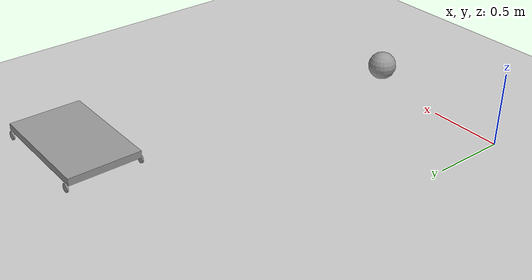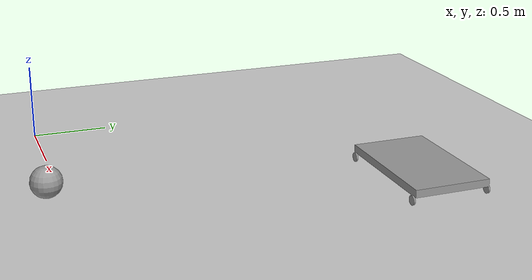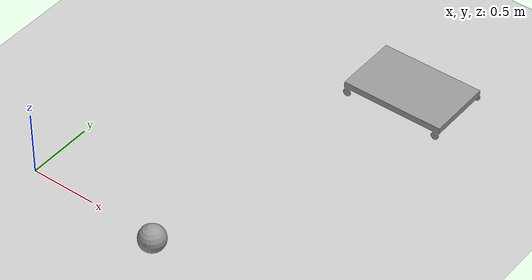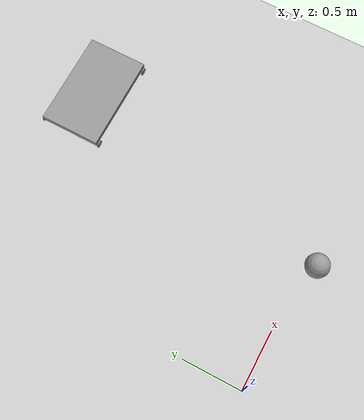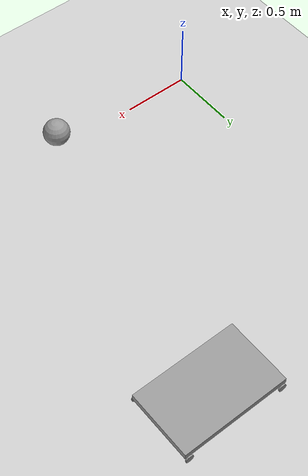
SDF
<sdf version="1.6">
 <world name="default">
  <model name="ground_plane">
   <static>1</static>
   <link name="link">
    <collision name="collision">
     <geometry><plane><normal>0 0 1</normal><size>100 100</size></plane></geometry>
     <surface><friction><ode><mu>100</mu><mu2>50</mu2></ode></friction></surface>
    </collision>
    <visual name="visual">
     <cast_shadows>0</cast_shadows>
     <geometry><plane><normal>0 0 1</normal><size>100 100</size></plane></geometry>
     <material>
      <script><uri>file://media/materials/scripts/gazebo.material</uri><name>Gazebo/Grey</name></script>
     </material>
    </visual>
   </link>
  </model>
  <model name="car_v1_0">
   <link name="link_0">
    <pose>0 0.000402 0.04 0 -0 0</pose>
    <inertial>
     <mass>1</mass>
     <inertia>
      <ixx>0.166667</ixx>
      <ixy>0</ixy>
      <ixz>0</ixz>
      <iyy>0.166667</iyy>
      <iyz>0</iyz>
      <izz>0.166667</izz>
     </inertia>
    </inertial>
    <visual name="visual">
     <geometry><box><size>0.8 0.5 0.05</size></box></geometry>
     <material>
      <lighting>1</lighting>
      <script><uri>file://media/materials/scripts/gazebo.material</uri><name>Gazebo/Grey</name></script>
      <ambient>0.3 0.3 0.3 1</ambient>
      <diffuse>0.7 0.7 0.7 1</diffuse>
      <specular>0.01 0.5 0.01 1</specular>
      <emissive>0 0 0 1</emissive>
      <shader type="vertex"><normal_map>__default__</normal_map></shader>
     </material>
    </visual>
    <collision name="collision">
     <geometry><box><size>0.8 0.5 0.05</size></box></geometry>
     <surface>
      <friction>
       <ode><mu>1</mu><mu2>1</mu2><fdir1>0 0 0</fdir1><slip1>0</slip1><slip2>0</slip2></ode>
       <torsional>
        <coefficient>1</coefficient>
        <patch_radius>0</patch_radius>
        <surface_radius>0</surface_radius>
        <use_patch_radius>1</use_patch_radius>
        <ode><slip>0</slip></ode>
       </torsional>
      </friction>
      <bounce><restitution_coefficient>0</restitution_coefficient><threshold>1e+06</threshold></bounce>
      <contact>
       <collide_without_contact>0</collide_without_contact>
       <collide_without_contact_bitmask>1</collide_without_contact_bitmask>
       <collide_bitmask>1</collide_bitmask>
       <ode>
        <soft_cfm>0</soft_cfm>
        <soft_erp>0.2</soft_erp>
        <kp>1e+13</kp>
        <kd>1</kd>
        <max_vel>0.01</max_vel>
        <min_depth>0</min_depth>
       </ode>
       <bullet>
        <split_impulse>1</split_impulse>
        <split_impulse_penetration_threshold>-0.01</split_impulse_penetration_threshold>
        <soft_cfm>0</soft_cfm>
        <soft_erp>0.2</soft_erp>
        <kp>1e+13</kp>
        <kd>1</kd>
       </bullet>
      </contact>
     </surface>
    </collision>
   </link>
   <link name="link_2">
    <pose>-0.37 -0.256611 -0.01 1.5707 -0 0</pose>
    <inertial>
     <mass>1</mass>
     <inertia><ixx>0.145833</ixx><ixy>0</ixy><ixz>0</ixz><iyy>0.145833</iyy><iyz>0</iyz><izz>0.125</izz></inertia>
    </inertial>
    <visual name="visual">
     <geometry><cylinder><radius>0.03</radius><length>0.01</length></cylinder></geometry>
     <material>
      <lighting>1</lighting>
      <script><uri>file://media/materials/scripts/gazebo.material</uri><name>Gazebo/Grey</name></script>
      <ambient>0.3 0.3 0.3 1</ambient>
      <diffuse>0.7 0.7 0.7 1</diffuse>
      <specular>0.01 0.01 0.01 1</specular>
      <emissive>0 0 0 1</emissive>
      <shader type="vertex"><normal_map>__default__</normal_map></shader>
     </material>
    </visual>
    <collision name="collision">
     <geometry><cylinder><radius>0.03</radius><length>0.01</length></cylinder></geometry>
     <surface>
      <friction>
       <ode><mu>1</mu><mu2>1</mu2><fdir1>0 0 0</fdir1><slip1>0</slip1><slip2>0</slip2></ode>
       <torsional>
        <coefficient>1</coefficient>
        <patch_radius>0</patch_radius>
        <surface_radius>0</surface_radius>
        <use_patch_radius>1</use_patch_radius>
        <ode><slip>0</slip></ode>
       </torsional>
      </friction>
      <bounce><restitution_coefficient>0</restitution_coefficient><threshold>1e+06</threshold></bounce>
      <contact>
       <collide_without_contact>0</collide_without_contact>
       <collide_without_contact_bitmask>1</collide_without_contact_bitmask>
       <collide_bitmask>1</collide_bitmask>
       <ode>
        <soft_cfm>0</soft_cfm>
        <soft_erp>0.2</soft_erp>
        <kp>1e+13</kp>
        <kd>1</kd>
        <max_vel>0.01</max_vel>
        <min_depth>0</min_depth>
       </ode>
       <bullet>
        <split_impulse>1</split_impulse>
        <split_impulse_penetration_threshold>-0.01</split_impulse_penetration_threshold>
        <soft_cfm>0</soft_cfm>
        <soft_erp>0.2</soft_erp>
        <kp>1e+13</kp>
        <kd>1</kd>
       </bullet>
      </contact>
     </surface>
    </collision>
   </link>
   <link name="link_2_clone">
    <pose>-0.37 0.255405 -0.01 1.5707 -0 0</pose>
    <inertial>
     <mass>1</mass>
     <inertia><ixx>0.145833</ixx><ixy>0</ixy><ixz>0</ixz><iyy>0.145833</iyy><iyz>0</iyz><izz>0.125</izz></inertia>
    </inertial>
    <visual name="visual">
     <geometry><cylinder><radius>0.03</radius><length>0.01</length></cylinder></geometry>
     <material>
      <lighting>1</lighting>
      <script><uri>file://media/materials/scripts/gazebo.material</uri><name>Gazebo/Grey</name></script>
      <ambient>0.3 0.3 0.3 1</ambient>
      <diffuse>0.7 0.7 0.7 1</diffuse>
      <specular>0.01 0.01 0.01 1</specular>
      <emissive>0 0 0 1</emissive>
      <shader type="vertex"><normal_map>__default__</normal_map></shader>
     </material>
    </visual>
    <collision name="collision">
     <geometry><cylinder><radius>0.03</radius><length>0.01</length></cylinder></geometry>
     <surface>
      <friction>
       <ode><mu>1</mu><mu2>1</mu2><fdir1>0 0 0</fdir1><slip1>0</slip1><slip2>0</slip2></ode>
       <torsional>
        <coefficient>1</coefficient>
        <patch_radius>0</patch_radius>
        <surface_radius>0</surface_radius>
        <use_patch_radius>1</use_patch_radius>
        <ode><slip>0</slip></ode>
       </torsional>
      </friction>
      <bounce><restitution_coefficient>0</restitution_coefficient><threshold>1e+06</threshold></bounce>
      <contact>
       <collide_without_contact>0</collide_without_contact>
       <collide_without_contact_bitmask>1</collide_without_contact_bitmask>
       <collide_bitmask>1</collide_bitmask>
       <ode>
        <soft_cfm>0</soft_cfm>
        <soft_erp>0.2</soft_erp>
        <kp>1e+13</kp>
        <kd>1</kd>
        <max_vel>0.01</max_vel>
        <min_depth>0</min_depth>
       </ode>
       <bullet>
        <split_impulse>1</split_impulse>
        <split_impulse_penetration_threshold>-0.01</split_impulse_penetration_threshold>
        <soft_cfm>0</soft_cfm>
        <soft_erp>0.2</soft_erp>
        <kp>1e+13</kp>
        <kd>1</kd>
       </bullet>
      </contact>
     </surface>
    </collision>
   </link>
   <link name="link_2_clone_0">
    <pose>0.37 -0.254601 -0.01 1.5707 -0 0</pose>
    <inertial>
     <mass>1</mass>
     <inertia><ixx>0.145833</ixx><ixy>0</ixy><ixz>0</ixz><iyy>0.145833</iyy><iyz>0</iyz><izz>0.125</izz></inertia>
    </inertial>
    <visual name="visual">
     <geometry><cylinder><radius>0.03</radius><length>0.01</length></cylinder></geometry>
     <material>
      <lighting>1</lighting>
      <script><uri>file://media/materials/scripts/gazebo.material</uri><name>Gazebo/Grey</name></script>
      <ambient>0.3 0.3 0.3 1</ambient>
      <diffuse>0.7 0.7 0.7 1</diffuse>
      <specular>0.01 0.01 0.01 1</specular>
      <emissive>0 0 0 1</emissive>
      <shader type="vertex"><normal_map>__default__</normal_map></shader>
     </material>
    </visual>
    <collision name="collision">
     <geometry><cylinder><radius>0.03</radius><length>0.01</length></cylinder></geometry>
     <surface>
      <friction>
       <ode><mu>1</mu><mu2>1</mu2><fdir1>0 0 0</fdir1><slip1>0</slip1><slip2>0</slip2></ode>
       <torsional>
        <coefficient>1</coefficient>
        <patch_radius>0</patch_radius>
        <surface_radius>0</surface_radius>
        <use_patch_radius>1</use_patch_radius>
        <ode><slip>0</slip></ode>
       </torsional>
      </friction>
      <bounce><restitution_coefficient>0</restitution_coefficient><threshold>1e+06</threshold></bounce>
      <contact>
       <collide_without_contact>0</collide_without_contact>
       <collide_without_contact_bitmask>1</collide_without_contact_bitmask>
       <collide_bitmask>1</collide_bitmask>
       <ode>
        <soft_cfm>0</soft_cfm>
        <soft_erp>0.2</soft_erp>
        <kp>1e+13</kp>
        <kd>1</kd>
        <max_vel>0.01</max_vel>
        <min_depth>0</min_depth>
       </ode>
       <bullet>
        <split_impulse>1</split_impulse>
        <split_impulse_penetration_threshold>-0.01</split_impulse_penetration_threshold>
        <soft_cfm>0</soft_cfm>
        <soft_erp>0.2</soft_erp>
        <kp>1e+13</kp>
        <kd>1</kd>
       </bullet>
      </contact>
     </surface>
    </collision>
   </link>
   <link name="link_2_clone_1">
    <pose>0.37 0.255405 -0.01 1.5707 -0 0</pose>
    <inertial>
     <mass>1</mass>
     <inertia><ixx>0.145833</ixx><ixy>0</ixy><ixz>0</ixz><iyy>0.145833</iyy><iyz>0</iyz><izz>0.125</izz></inertia>
    </inertial>
    <visual name="visual">
     <geometry><cylinder><radius>0.03</radius><length>0.01</length></cylinder></geometry>
     <material>
      <lighting>1</lighting>
      <script><uri>file://media/materials/scripts/gazebo.material</uri><name>Gazebo/Grey</name></script>
      <ambient>0.3 0.3 0.3 1</ambient>
      <diffuse>0.7 0.7 0.7 1</diffuse>
      <specular>0.01 0.01 0.01 1</specular>
      <emissive>0 0 0 1</emissive>
      <shader type="vertex"><normal_map>__default__</normal_map></shader>
     </material>
    </visual>
    <collision name="collision">
     <geometry><cylinder><radius>0.03</radius><length>0.01</length></cylinder></geometry>
     <surface>
      <friction>
       <ode><mu>1</mu><mu2>1</mu2><fdir1>0 0 0</fdir1><slip1>0</slip1><slip2>0</slip2></ode>
       <torsional>
        <coefficient>1</coefficient>
        <patch_radius>0</patch_radius>
        <surface_radius>0</surface_radius>
        <use_patch_radius>1</use_patch_radius>
        <ode><slip>0</slip></ode>
       </torsional>
      </friction>
      <bounce><restitution_coefficient>0</restitution_coefficient><threshold>1e+06</threshold></bounce>
      <contact>
       <collide_without_contact>0</collide_without_contact>
       <collide_without_contact_bitmask>1</collide_without_contact_bitmask>
       <collide_bitmask>1</collide_bitmask>
       <ode>
        <soft_cfm>0</soft_cfm>
        <soft_erp>0.2</soft_erp>
        <kp>1e+13</kp>
        <kd>1</kd>
        <max_vel>0.01</max_vel>
        <min_depth>0</min_depth>
       </ode>
       <bullet>
        <split_impulse>1</split_impulse>
        <split_impulse_penetration_threshold>-0.01</split_impulse_penetration_threshold>
        <soft_cfm>0</soft_cfm>
        <soft_erp>0.2</soft_erp>
        <kp>1e+13</kp>
        <kd>1</kd>
       </bullet>
      </contact>
     </surface>
    </collision>
   </link>
   <joint name="link_0_JOINT_0" type="universal">
    <parent>link_0</parent>
    <child>link_2</child>
    <axis>
     <xyz>1 0 0</xyz>
     <use_parent_model_frame>0</use_parent_model_frame>
     <limit>
      <lower>-1.79769e+308</lower>
      <upper>1.79769e+308</upper>
      <effort>-1</effort>
      <velocity>-1</velocity>
     </limit>
     <dynamics>
      <spring_reference>0</spring_reference>
      <spring_stiffness>0</spring_stiffness>
      <damping>0</damping>
      <friction>0</friction>
     </dynamics>
    </axis>
    <axis2>
     <xyz>0 1 0</xyz>
     <use_parent_model_frame>0</use_parent_model_frame>
     <dynamics>
      <spring_reference>0</spring_reference>
      <spring_stiffness>0</spring_stiffness>
      <damping>0</damping>
      <friction>0</friction>
     </dynamics>
     <limit>
      <lower>-1.79769e+308</lower>
      <upper>1.79769e+308</upper>
      <effort>-1</effort>
      <velocity>-1</velocity>
     </limit>
    </axis2>
    <physics>
     <ode><limit><cfm>0</cfm><erp>0.2</erp></limit><suspension><cfm>0</cfm><erp>0.2</erp></suspension></ode>
    </physics>
   </joint>
   <joint name="link_0_JOINT_1" type="universal">
    <parent>link_0</parent>
    <child>link_2_clone</child>
    <axis>
     <xyz>1 0 0</xyz>
     <use_parent_model_frame>0</use_parent_model_frame>
     <limit>
      <lower>-1.79769e+308</lower>
      <upper>1.79769e+308</upper>
      <effort>-1</effort>
      <velocity>-1</velocity>
     </limit>
     <dynamics>
      <spring_reference>0</spring_reference>
      <spring_stiffness>0</spring_stiffness>
      <damping>0</damping>
      <friction>0</friction>
     </dynamics>
    </axis>
    <axis2>
     <xyz>0 1 0</xyz>
     <use_parent_model_frame>0</use_parent_model_frame>
     <dynamics>
      <spring_reference>0</spring_reference>
      <spring_stiffness>0</spring_stiffness>
      <damping>0</damping>
      <friction>0</friction>
     </dynamics>
     <limit>
      <lower>-1.79769e+308</lower>
      <upper>1.79769e+308</upper>
      <effort>-1</effort>
      <velocity>-1</velocity>
     </limit>
    </axis2>
    <physics>
     <ode><limit><cfm>0</cfm><erp>0.2</erp></limit><suspension><cfm>0</cfm><erp>0.2</erp></suspension></ode>
    </physics>
   </joint>
   <joint name="link_0_JOINT_2" type="universal">
    <parent>link_0</parent>
    <child>link_2_clone_0</child>
    <axis>
     <xyz>1 0 0</xyz>
     <use_parent_model_frame>0</use_parent_model_frame>
     <limit>
      <lower>-1.79769e+308</lower>
      <upper>1.79769e+308</upper>
      <effort>-1</effort>
      <velocity>-1</velocity>
     </limit>
     <dynamics>
      <spring_reference>0</spring_reference>
      <spring_stiffness>0</spring_stiffness>
      <damping>0</damping>
      <friction>0</friction>
     </dynamics>
    </axis>
    <axis2>
     <xyz>0 1 0</xyz>
     <use_parent_model_frame>0</use_parent_model_frame>
     <dynamics>
      <spring_reference>0</spring_reference>
      <spring_stiffness>0</spring_stiffness>
      <damping>0</damping>
      <friction>0</friction>
     </dynamics>
     <limit>
      <lower>-1.79769e+308</lower>
      <upper>1.79769e+308</upper>
      <effort>-1</effort>
      <velocity>-1</velocity>
     </limit>
    </axis2>
    <physics>
     <ode><limit><cfm>0</cfm><erp>0.2</erp></limit><suspension><cfm>0</cfm><erp>0.2</erp></suspension></ode>
    </physics>
   </joint>
   <joint name="link_0_JOINT_3" type="revolute">
    <parent>link_0</parent>
    <child>link_2_clone_1</child>
    <axis>
     <xyz>1 0 0</xyz>
     <use_parent_model_frame>0</use_parent_model_frame>
     <limit>
      <lower>-1.79769e+308</lower>
      <upper>1.79769e+308</upper>
      <effort>-1</effort>
      <velocity>-1</velocity>
     </limit>
     <dynamics>
      <spring_reference>0</spring_reference>
      <spring_stiffness>0</spring_stiffness>
      <damping>0</damping>
      <friction>0</friction>
     </dynamics>
    </axis>
    <physics>
     <ode><limit><cfm>0</cfm><erp>0.2</erp></limit><suspension><cfm>0</cfm><erp>0.2</erp></suspension></ode>
    </physics>
   </joint>
   <static>0</static>
   <pose>1.57725 2.16095 0.039999 0 4e-06 0.000157</pose>
  </model>
  <model name="my_ball">
   <link name="link_0">
    <inertial>
     <mass>1</mass>
     <inertia><ixx>0.1</ixx><ixy>0</ixy><ixz>0</ixz><iyy>0.1</iyy><iyz>0</iyz><izz>0.1</izz></inertia>
    </inertial>
    <visual name="visual">
     <geometry><sphere><radius>0.1</radius></sphere></geometry>
     <material>
      <lighting>1</lighting>
      <script><uri>file://media/materials/scripts/gazebo.material</uri><name>Gazebo/Grey</name></script>
      <shader type="pixel"><normal_map>__default__</normal_map></shader>
      <ambient>1 1 1 1</ambient>
      <diffuse>1 1 1 1</diffuse>
      <specular>1 1 1 1</specular>
      <emissive>1 1 1 1</emissive>
     </material>
    </visual>
    <collision name="collision">
     <geometry><sphere><radius>0.1</radius></sphere></geometry>
     <surface>
      <friction>
       <ode><mu>1</mu><mu2>1</mu2><fdir1>0 0 0</fdir1><slip1>0</slip1><slip2>0</slip2></ode>
       <torsional>
        <coefficient>1</coefficient>
        <patch_radius>0</patch_radius>
        <surface_radius>0</surface_radius>
        <use_patch_radius>1</use_patch_radius>
        <ode><slip>0</slip></ode>
       </torsional>
      </friction>
      <bounce><restitution_coefficient>0</restitution_coefficient><threshold>1e+06</threshold></bounce>
      <contact>
       <collide_without_contact>0</collide_without_contact>
       <collide_without_contact_bitmask>1</collide_without_contact_bitmask>
       <collide_bitmask>1</collide_bitmask>
       <ode>
        <soft_cfm>0</soft_cfm>
        <soft_erp>0.2</soft_erp>
        <kp>1e+13</kp>
        <kd>1</kd>
        <max_vel>0.01</max_vel>
        <min_depth>0</min_depth>
       </ode>
       <bullet>
        <split_impulse>1</split_impulse>
        <split_impulse_penetration_threshold>-0.01</split_impulse_penetration_threshold>
        <soft_cfm>0</soft_cfm>
        <soft_erp>0.2</soft_erp>
        <kp>1e+13</kp>
        <kd>1</kd>
       </bullet>
      </contact>
     </surface>
    </collision>
   </link>
   <static>0</static>
   <pose>1.09888 -0.087508 0.1 0 -0 0</pose>
  </model>
 </world>
</sdf>
